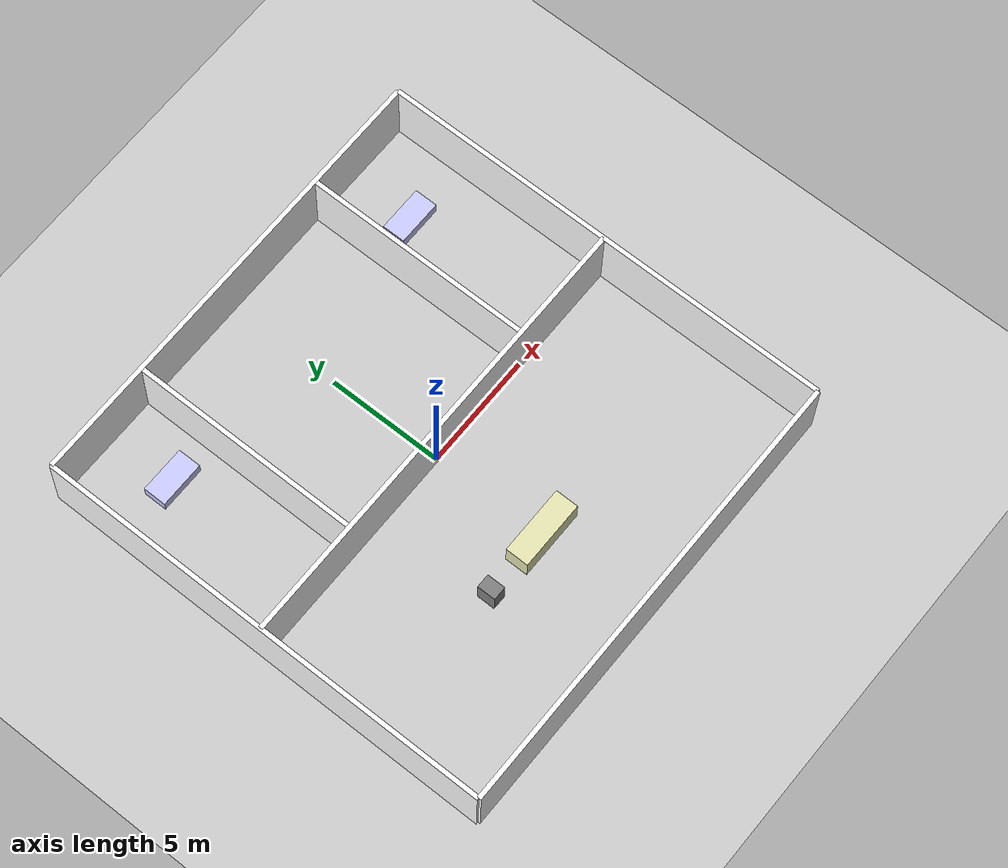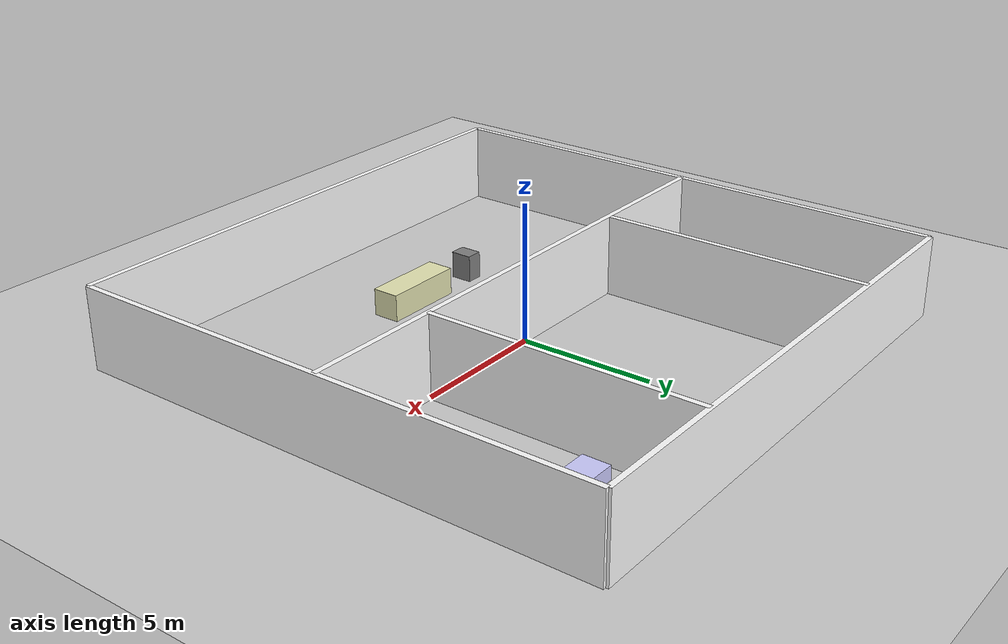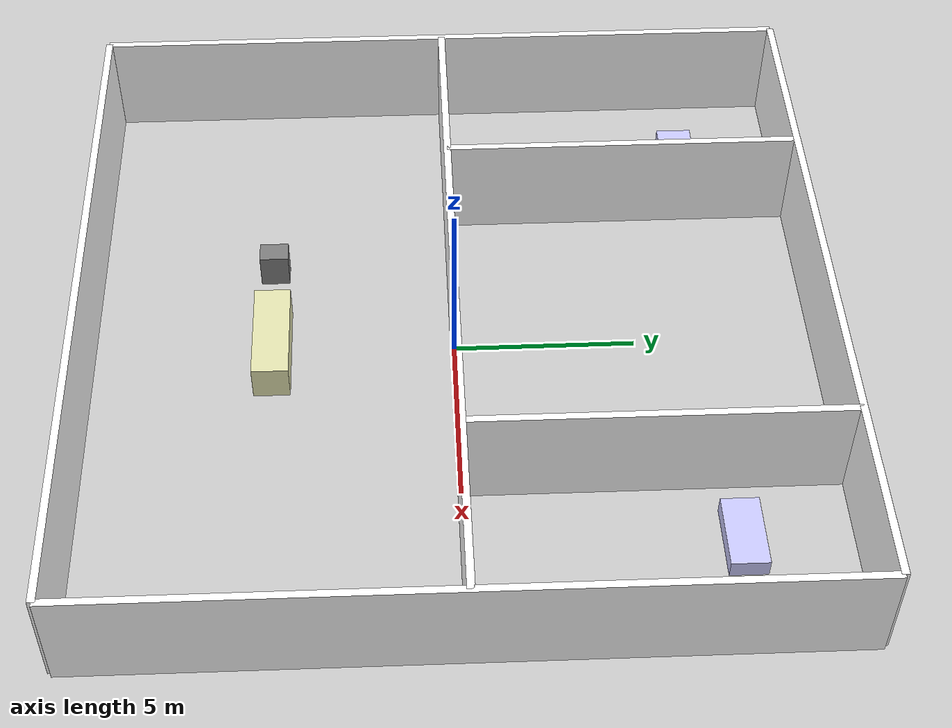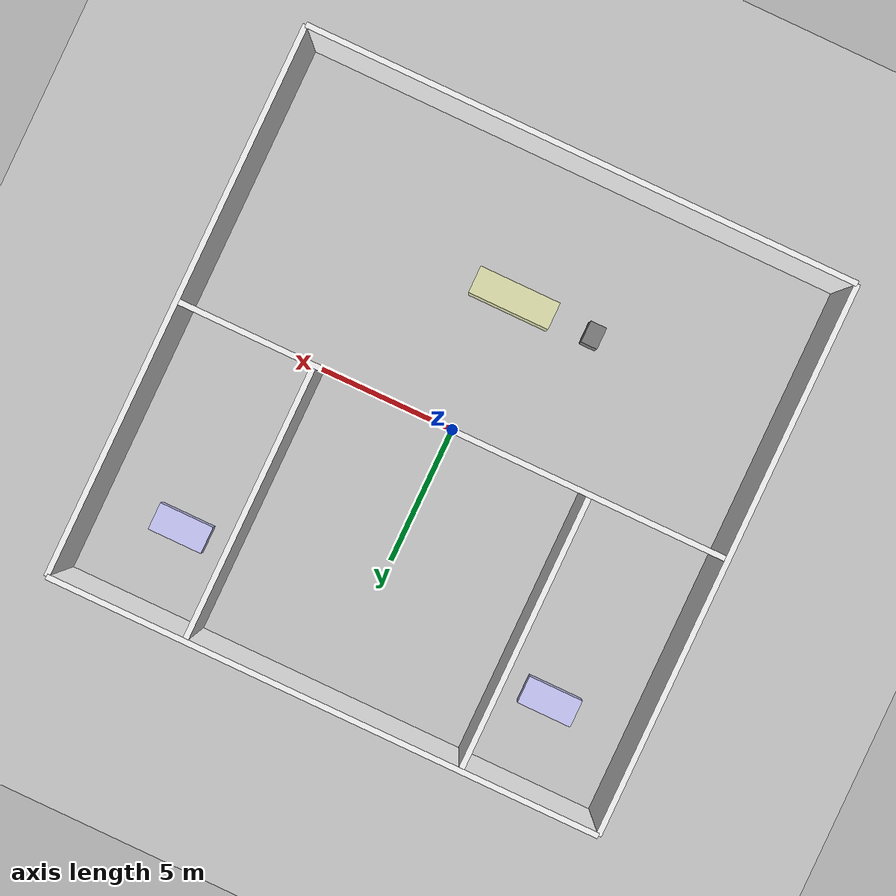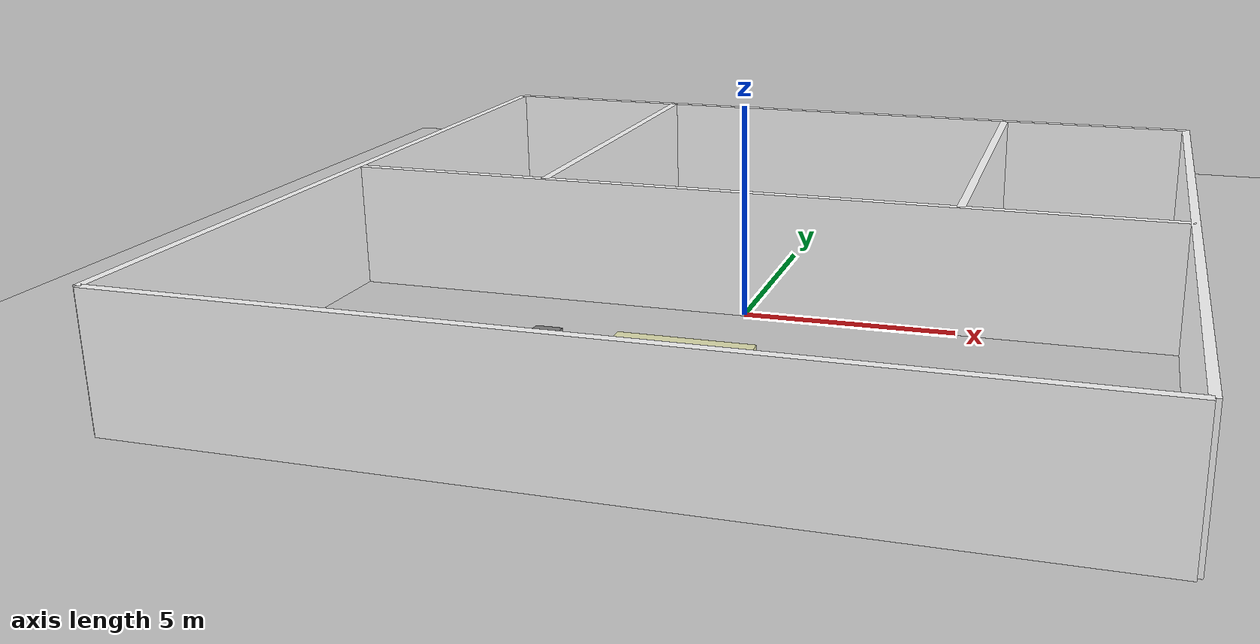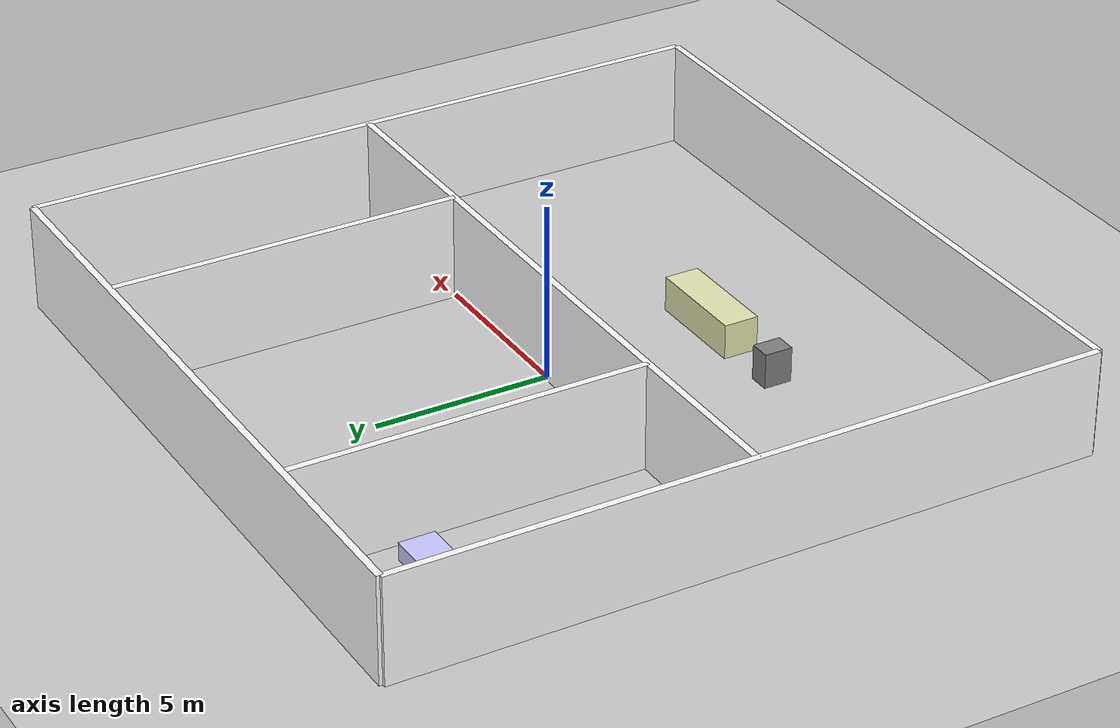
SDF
<?xml version="1.0" ?>
<sdf version="1.6">
  <world name="hospital">

    <!-- Sun -->
    <light name="sun" type="directional">
      <cast_shadows>true</cast_shadows>
      <pose>0 0 10 0 0 0</pose>
      <diffuse>1 1 1 1</diffuse>
      <specular>0.5 0.5 0.5 1</specular>
      <direction>-0.5 0.1 -0.9</direction>
    </light>

    <!-- Ground -->
    <model name="ground_plane">
      <static>true</static>
      <link name="link">
        <collision name="collision">
          <geometry><plane><normal>0 0 1</normal></plane></geometry>
        </collision>
        <visual name="visual">
          <geometry><plane><normal>0 0 1</normal><size>100 100</size></plane></geometry>
          <material><ambient>0.8 0.8 0.8 1</ambient></material>
        </visual>
      </link>
    </model>

    <!-- Outer Walls -->
    <!-- North Wall -->
    <model name="wall_north">
      <static>true</static>
      <pose>0 10 1.5 0 0 0</pose>
      <link name="link">
        <collision name="collision">
          <geometry><box><size>20 0.2 3</size></box></geometry>
        </collision>
        <visual name="visual">
          <geometry><box><size>20 0.2 3</size></box></geometry>
          <material><ambient>1 1 1 1</ambient></material>
        </visual>
      </link>
    </model>

    <!-- South Wall -->
    <model name="wall_south">
      <static>true</static>
      <pose>0 -10 1.5 0 0 0</pose>
      <link name="link">
        <collision name="collision">
          <geometry><box><size>20 0.2 3</size></box></geometry>
        </collision>
        <visual name="visual">
          <geometry><box><size>20 0.2 3</size></box></geometry>
          <material><ambient>1 1 1 1</ambient></material>
        </visual>
      </link>
    </model>

    <!-- East Wall -->
    <model name="wall_east">
      <static>true</static>
      <pose>10 0 1.5 0 0 0</pose>
      <link name="link">
        <collision name="collision">
          <geometry><box><size>0.2 20 3</size></box></geometry>
        </collision>
        <visual name="visual">
          <geometry><box><size>0.2 20 3</size></box></geometry>
          <material><ambient>1 1 1 1</ambient></material>
        </visual>
      </link>
    </model>

    <!-- West Wall -->
    <model name="wall_west">
      <static>true</static>
      <pose>-10 0 1.5 0 0 0</pose>
      <link name="link">
        <collision name="collision">
          <geometry><box><size>0.2 20 3</size></box></geometry>
        </collision>
        <visual name="visual">
          <geometry><box><size>0.2 20 3</size></box></geometry>
          <material><ambient>1 1 1 1</ambient></material>
        </visual>
      </link>
    </model>

    <!-- Corridor Wall -->
    <model name="wall_corridor">
      <static>true</static>
      <pose>0 0 1.5 0 0 0</pose>
      <link name="link">
        <collision name="collision">
          <geometry><box><size>20 0.2 3</size></box></geometry>
        </collision>
        <visual name="visual">
          <geometry><box><size>20 0.2 3</size></box></geometry>
          <material><ambient>1 1 1 1</ambient></material>
        </visual>
      </link>
    </model>

    <!-- Room 1 Wall -->
    <model name="wall_room1">
      <static>true</static>
      <pose>-5 5 1.5 0 0 1.5707</pose>
      <link name="link">
        <collision name="collision">
          <geometry><box><size>10 0.2 3</size></box></geometry>
        </collision>
        <visual name="visual">
          <geometry><box><size>10 0.2 3</size></box></geometry>
          <material><ambient>1 1 1 1</ambient></material>
        </visual>
      </link>
    </model>

    <!-- Room 2 Wall -->
    <model name="wall_room2">
      <static>true</static>
      <pose>5 5 1.5 0 0 1.5707</pose>
      <link name="link">
        <collision name="collision">
          <geometry><box><size>10 0.2 3</size></box></geometry>
        </collision>
        <visual name="visual">
          <geometry><box><size>10 0.2 3</size></box></geometry>
          <material><ambient>1 1 1 1</ambient></material>
        </visual>
      </link>
    </model>

    <!-- Bed Room 1 -->
    <model name="bed_1">
      <static>true</static>
      <pose>-7 7 0.5 0 0 0</pose>
      <link name="link">
        <collision name="collision">
          <geometry><box><size>2 1 0.5</size></box></geometry>
        </collision>
        <visual name="visual">
          <geometry><box><size>2 1 0.5</size></box></geometry>
          <material><ambient>0.8 0.8 1 1</ambient></material>
        </visual>
      </link>
    </model>

    <!-- Bed Room 2 -->
    <model name="bed_2">
      <static>true</static>
      <pose>7 7 0.5 0 0 0</pose>
      <link name="link">
        <collision name="collision">
          <geometry><box><size>2 1 0.5</size></box></geometry>
        </collision>
        <visual name="visual">
          <geometry><box><size>2 1 0.5</size></box></geometry>
          <material><ambient>0.8 0.8 1 1</ambient></material>
        </visual>
      </link>
    </model>

    <!-- Wheelchair -->
    <model name="wheelchair_1">
      <static>true</static>
      <pose>-3 -5 0.5 0 0 0</pose>
      <link name="link">
        <collision name="collision">
          <geometry><box><size>0.6 0.8 1</size></box></geometry>
        </collision>
        <visual name="visual">
          <geometry><box><size>0.6 0.8 1</size></box></geometry>
          <material><ambient>0.5 0.5 0.5 1</ambient></material>
        </visual>
      </link>
    </model>

    <!-- Nurse Station -->
    <model name="nurse_station">
      <static>true</static>
      <pose>0 -5 0.5 0 0 0</pose>
      <link name="link">
        <collision name="collision">
          <geometry><box><size>3 1 1</size></box></geometry>
        </collision>
        <visual name="visual">
          <geometry><box><size>3 1 1</size></box></geometry>
          <material><ambient>0.9 0.9 0.7 1</ambient></material>
        </visual>
      </link>
    </model>

  </world>
</sdf>
